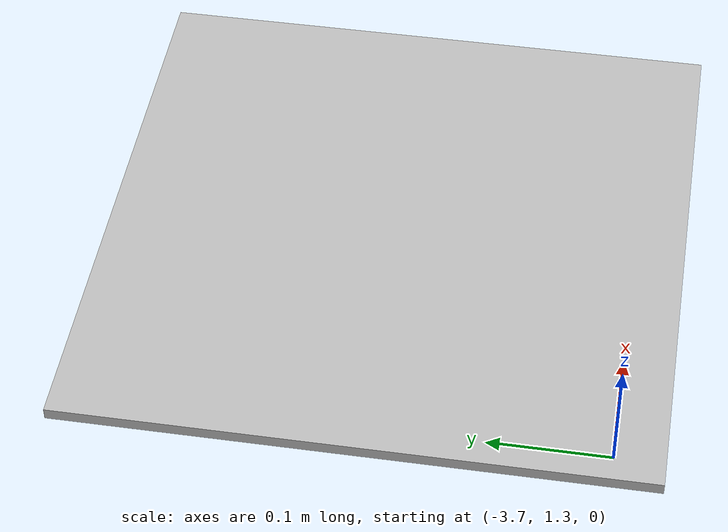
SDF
<sdf version="1.5">
  <model name='single_aruco_91'>
      <static>true</static>
      <link name="single_aruco_91">
        <pose frame=''> -3.5 1.5 0.02 0.0 0.0 0.0</pose>
        <visual name="visual">
            <cast_shadows>false</cast_shadows>
        <geometry>
          <box>
            <size>0.48 0.48 0.01</size>
          </box>
        </geometry>
        <material>
          <script>
            <uri>model://single_aruco/single_aruco.material</uri>
            <name>arcuo_92</name>
          </script>
        </material>
        </visual>
      </link>
    </model>
</sdf>
